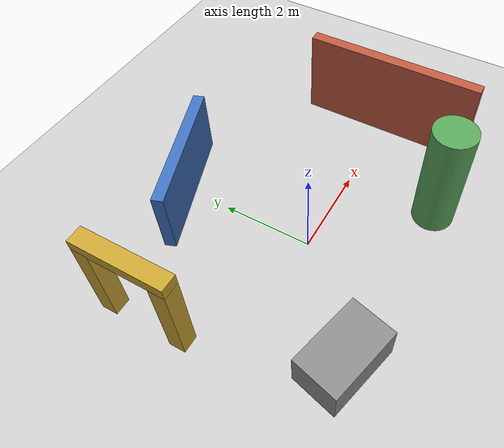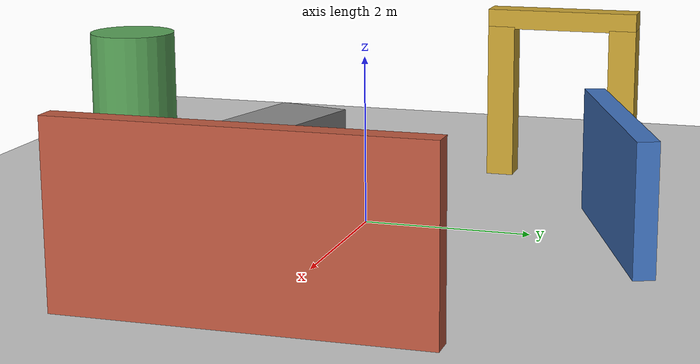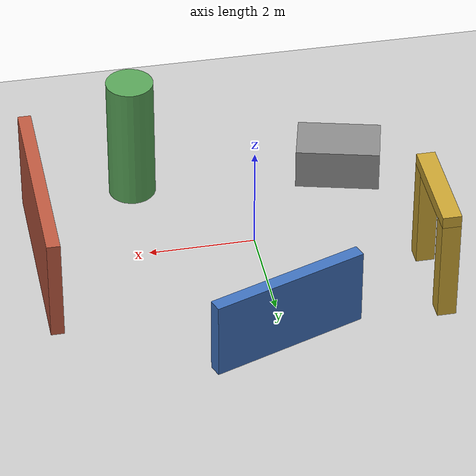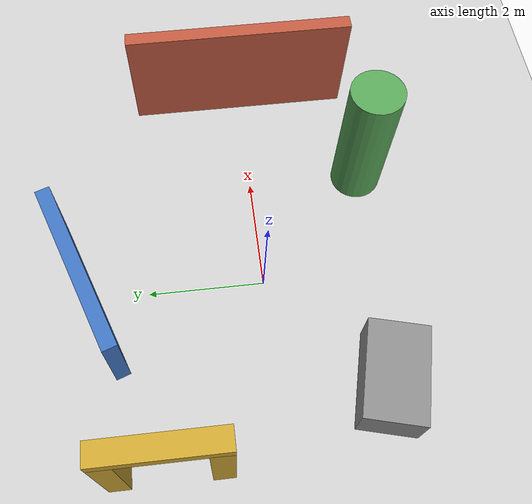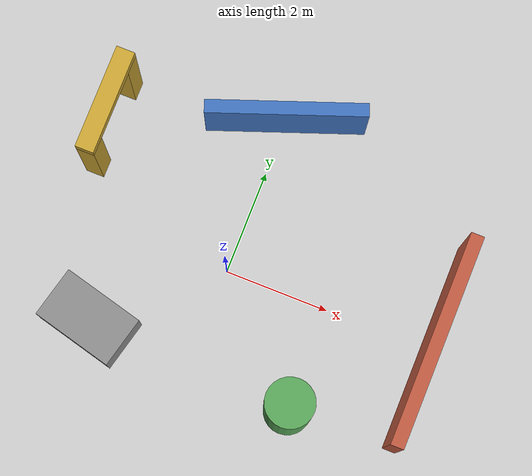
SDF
<?xml version="1.0" ?>
<sdf version="1.5">
  <world name="obstacle_test">
    <include>
      <uri>model://sun</uri>
    </include>
    <include>
      <uri>model://ground_plane</uri>
    </include>

    <physics type="ode" max_step_size="0.01"/>
    <real_time_factor>1.0</real_time_factor>
    <real_time_update_rate>100</real_time_update_rate>

    <model name="test_wall_front">
      <static>true</static>
      <pose>4.0 0.0 1.0 0 0 0</pose>
      <link name="link">
        <collision name="collision">
          <geometry><box><size>0.25 4.0 2.0</size></box></geometry>
        </collision>
        <visual name="visual">
          <geometry><box><size>0.25 4.0 2.0</size></box></geometry>
          <material>
            <ambient>0.75 0.35 0.25 1</ambient>
            <diffuse>0.75 0.35 0.25 1</diffuse>
          </material>
        </visual>
      </link>
    </model>

    <model name="test_wall_left">
      <static>true</static>
      <pose>0.0 3.0 0.75 0 0 0.35</pose>
      <link name="link">
        <collision name="collision">
          <geometry><box><size>3.0 0.25 1.5</size></box></geometry>
        </collision>
        <visual name="visual">
          <geometry><box><size>3.0 0.25 1.5</size></box></geometry>
          <material>
            <ambient>0.25 0.45 0.75 1</ambient>
            <diffuse>0.25 0.45 0.75 1</diffuse>
          </material>
        </visual>
      </link>
    </model>

    <model name="test_pillar_center">
      <static>true</static>
      <pose>2.0 -2.0 1.25 0 0 0</pose>
      <link name="link">
        <collision name="collision">
          <geometry><cylinder><radius>0.45</radius><length>2.5</length></cylinder></geometry>
        </collision>
        <visual name="visual">
          <geometry><cylinder><radius>0.45</radius><length>2.5</length></cylinder></geometry>
          <material>
            <ambient>0.35 0.65 0.35 1</ambient>
            <diffuse>0.35 0.65 0.35 1</diffuse>
          </material>
        </visual>
      </link>
    </model>

    <model name="test_low_block">
      <static>true</static>
      <pose>-2.0 -1.8 0.4 0 0 -0.25</pose>
      <link name="link">
        <collision name="collision">
          <geometry><box><size>1.6 1.0 0.8</size></box></geometry>
        </collision>
        <visual name="visual">
          <geometry><box><size>1.6 1.0 0.8</size></box></geometry>
          <material>
            <ambient>0.55 0.55 0.55 1</ambient>
            <diffuse>0.55 0.55 0.55 1</diffuse>
          </material>
        </visual>
      </link>
    </model>

    <model name="test_gate_left">
      <static>true</static>
      <pose>-3.0 1.0 1.0 0 0 0</pose>
      <link name="link">
        <collision name="collision">
          <geometry><box><size>0.35 0.35 2.0</size></box></geometry>
        </collision>
        <visual name="visual">
          <geometry><box><size>0.35 0.35 2.0</size></box></geometry>
          <material>
            <ambient>0.8 0.65 0.2 1</ambient>
            <diffuse>0.8 0.65 0.2 1</diffuse>
          </material>
        </visual>
      </link>
    </model>

    <model name="test_gate_right">
      <static>true</static>
      <pose>-3.0 2.6 1.0 0 0 0</pose>
      <link name="link">
        <collision name="collision">
          <geometry><box><size>0.35 0.35 2.0</size></box></geometry>
        </collision>
        <visual name="visual">
          <geometry><box><size>0.35 0.35 2.0</size></box></geometry>
          <material>
            <ambient>0.8 0.65 0.2 1</ambient>
            <diffuse>0.8 0.65 0.2 1</diffuse>
          </material>
        </visual>
      </link>
    </model>

    <model name="test_gate_top">
      <static>true</static>
      <pose>-3.0 1.8 2.1 0 0 0</pose>
      <link name="link">
        <collision name="collision">
          <geometry><box><size>0.35 1.95 0.25</size></box></geometry>
        </collision>
        <visual name="visual">
          <geometry><box><size>0.35 1.95 0.25</size></box></geometry>
          <material>
            <ambient>0.8 0.65 0.2 1</ambient>
            <diffuse>0.8 0.65 0.2 1</diffuse>
          </material>
        </visual>
      </link>
    </model>
  </world>
</sdf>
